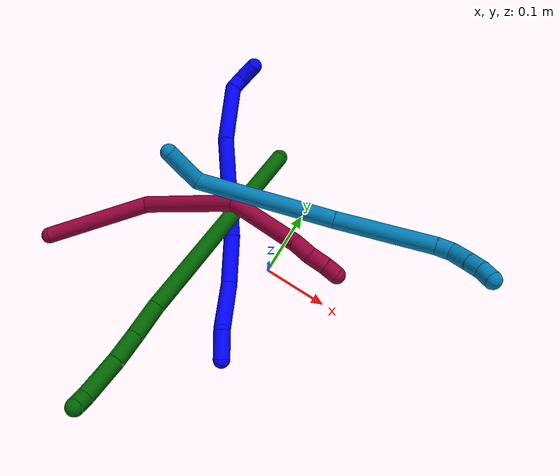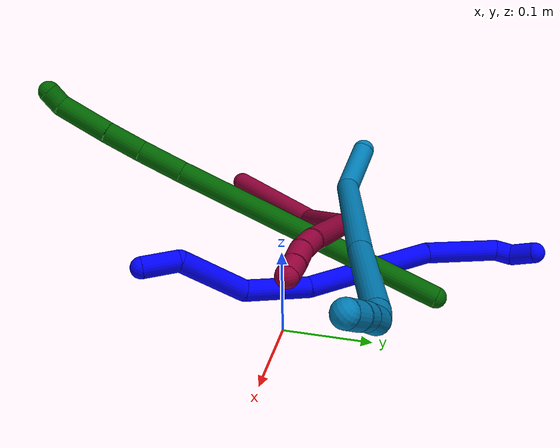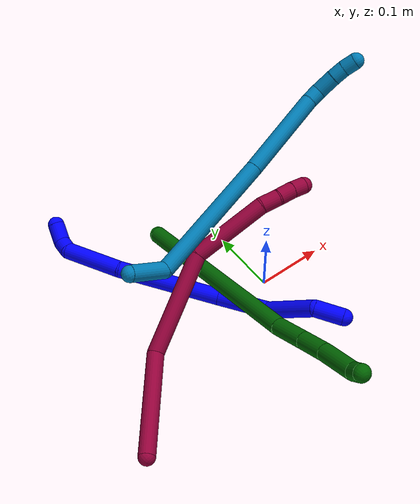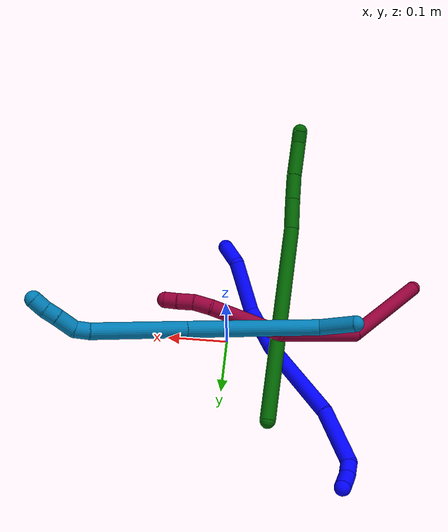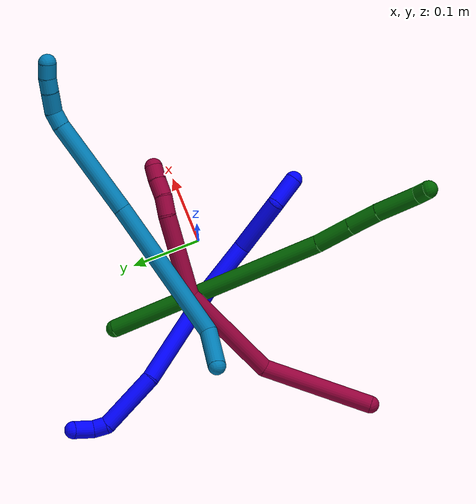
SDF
<sdf version="1.7">
 <world name="default">
  <model name="photoneo_s_sensor">
   <static>1</static>
   <pose>0 0 2 1.57079 1.57079 3.14159</pose>
   <link name="link">
    <inertial><mass>0.1</mass></inertial>
    <sensor name="sensor" type="depth">
     <update_rate>30</update_rate>
     <camera>
      <horizontal_fov>1.22</horizontal_fov>
      <image><width>1920</width><height>1200</height><format>B8G8R8</format></image>
      <clip><near>0.1</near><far>4</far></clip>
      <depth_camera><output>points</output></depth_camera>
     </camera>
     <plugin name="camera_plugin" filename="libgazebo_ros_depth_camera.so">
      <baseline>0.2</baseline>
      <alwaysOn>1</alwaysOn>
      <updateRate>0.0</updateRate>
      <cameraName>camera_ir</cameraName>
      <imageTopicName>/camera/color/image_raw</imageTopicName>
      <cameraInfoTopicName>/camera/color/camera_info</cameraInfoTopicName>
      <depthImageTopicName>/camera/depth/image_raw</depthImageTopicName>
      <depthImageCameraInfoTopicName>/camera/depth/camera_info</depthImageCameraInfoTopicName>
      <pointCloudTopicName>/camera/depth/points</pointCloudTopicName>
      <frameName>fr_optical</frameName>
      <pointCloudCutoff>0.1</pointCloudCutoff>
      <pointCloudCutoffMax>2.0</pointCloudCutoffMax>
      <distortionK1>0</distortionK1>
      <distortionK2>0</distortionK2>
      <distortionK3>0</distortionK3>
      <distortionT1>0</distortionT1>
      <distortionT2>0</distortionT2>
      <CxPrime>0</CxPrime>
      <Cx>0</Cx>
      <Cy>0</Cy>
      <focalLength>0</focalLength>
      <hackBaseline>0</hackBaseline>
     </plugin>
    </sensor>
   </link>
  </model>
  <model name="bin">
   <static>1</static>
   <link name="bottom">
    <collision name="collision-bottom">
     <pose>0 0 -0.01 0 -0 0</pose>
     <geometry><box><size>0.8 0.6 0.02</size></box></geometry>
     <surface>
      <friction><ode><mu>100</mu><mu2>100</mu2></ode></friction>
      <contact><collide_bitmask>65535</collide_bitmask></contact>
     </surface>
    </collision>
   </link>
   <link name="west_wall">
    <collision name="collision-west_wall">
     <pose>-0.41 0 0.1 0 -0 0</pose>
     <geometry><box><size>0.02 0.6 0.2</size></box></geometry>
     <surface>
      <friction><ode><mu>100</mu><mu2>100</mu2></ode></friction>
      <contact><collide_bitmask>65535</collide_bitmask></contact>
     </surface>
    </collision>
   </link>
   <link name="east_wall">
    <collision name="collision-east_wall">
     <pose>0.41 0 0.1 0 -0 0</pose>
     <geometry><box><size>0.02 0.6 0.2</size></box></geometry>
     <surface>
      <friction><ode><mu>100</mu><mu2>100</mu2></ode></friction>
      <contact><collide_bitmask>65535</collide_bitmask></contact>
     </surface>
    </collision>
   </link>
   <link name="south_wall">
    <collision name="collision-south_wall">
     <pose>0 -0.31 0.1 0 -0 0</pose>
     <geometry><box><size>0.8 0.02 0.2</size></box></geometry>
     <surface>
      <friction><ode><mu>100</mu><mu2>100</mu2></ode></friction>
      <contact><collide_bitmask>65535</collide_bitmask></contact>
     </surface>
    </collision>
   </link>
   <link name="north_wall">
    <collision name="collision-north_wall">
     <pose>0 0.31 0.1 0 -0 0</pose>
     <geometry><box><size>0.8 0.02 0.2</size></box></geometry>
     <surface>
      <friction><ode><mu>100</mu><mu2>100</mu2></ode></friction>
      <contact><collide_bitmask>65535</collide_bitmask></contact>
     </surface>
    </collision>
   </link>
  </model>
  <model name="1">
   <static>0</static>
   <link name="1">
    <collision name="collision-cylinder-e_1_1_4">
     <pose>-0.011645 0.011863 0.013375 -0.725548 -0.577321 0.224484</pose>
     <geometry><cylinder><radius>0.0125</radius><length>0.042672</length></cylinder></geometry>
     <surface>
      <friction><ode><mu>1.16</mu><mu2>1.16</mu2><slip1>0</slip1><slip2>0</slip2></ode></friction>
      <contact><ode><kp>1e+06</kp><kd>1</kd><max_vel>0</max_vel><min_depth>0.001</min_depth></ode></contact>
     </surface>
    </collision>
    <visual name="visual-cylinder-e_1_1_4">
     <pose>-0.011645 0.011863 0.013375 -0.725548 -0.577321 0.224484</pose>
     <geometry><cylinder><radius>0.0125</radius><length>0.042672</length></cylinder></geometry>
     <material><ambient>0 0 1 1</ambient></material>
    </visual>
    <collision name="collision-cylinder-e_2_4_5">
     <pose>-0.021048 0.051606 0.059332 -0.707794 0.052234 -0.019302</pose>
     <geometry><cylinder><radius>0.0125</radius><length>0.085881</length></cylinder></geometry>
     <surface>
      <friction><ode><mu>1.16</mu><mu2>1.16</mu2><slip1>0</slip1><slip2>0</slip2></ode></friction>
      <contact><ode><kp>1e+06</kp><kd>1</kd><max_vel>0</max_vel><min_depth>0.001</min_depth></ode></contact>
     </surface>
    </collision>
    <visual name="visual-cylinder-e_2_4_5">
     <pose>-0.021048 0.051606 0.059332 -0.707794 0.052234 -0.019302</pose>
     <geometry><cylinder><radius>0.0125</radius><length>0.085881</length></cylinder></geometry>
     <material><ambient>0 0 1 1</ambient></material>
    </visual>
    <collision name="collision-cylinder-e_3_5_6">
     <pose>-0.035381 0.101931 0.1187 -0.697434 -0.44288 0.163341</pose>
     <geometry><cylinder><radius>0.0125</radius><length>0.077357</length></cylinder></geometry>
     <surface>
      <friction><ode><mu>1.16</mu><mu2>1.16</mu2><slip1>0</slip1><slip2>0</slip2></ode></friction>
      <contact><ode><kp>1e+06</kp><kd>1</kd><max_vel>0</max_vel><min_depth>0.001</min_depth></ode></contact>
     </surface>
    </collision>
    <visual name="visual-cylinder-e_3_5_6">
     <pose>-0.035381 0.101931 0.1187 -0.697434 -0.44288 0.163341</pose>
     <geometry><cylinder><radius>0.0125</radius><length>0.077357</length></cylinder></geometry>
     <material><ambient>0 0 1 1</ambient></material>
    </visual>
    <collision name="collision-cylinder-e_4_6_7">
     <pose>-0.097917 0.169243 0.188245 -0.809465 -0.638074 0.281141</pose>
     <geometry><cylinder><radius>0.0125</radius><length>0.154322</length></cylinder></geometry>
     <surface>
      <friction><ode><mu>1.16</mu><mu2>1.16</mu2><slip1>0</slip1><slip2>0</slip2></ode></friction>
      <contact><ode><kp>1e+06</kp><kd>1</kd><max_vel>0</max_vel><min_depth>0.001</min_depth></ode></contact>
     </surface>
    </collision>
    <visual name="visual-cylinder-e_4_6_7">
     <pose>-0.097917 0.169243 0.188245 -0.809465 -0.638074 0.281141</pose>
     <geometry><cylinder><radius>0.0125</radius><length>0.154322</length></cylinder></geometry>
     <material><ambient>0 0 1 1</ambient></material>
    </visual>
    <collision name="collision-cylinder-e_5_7_8">
     <pose>-0.164092 0.237007 0.263743 -0.61028 -0.468396 0.15001</pose>
     <geometry><cylinder><radius>0.0125</radius><length>0.089547</length></cylinder></geometry>
     <surface>
      <friction><ode><mu>1.16</mu><mu2>1.16</mu2><slip1>0</slip1><slip2>0</slip2></ode></friction>
      <contact><ode><kp>1e+06</kp><kd>1</kd><max_vel>0</max_vel><min_depth>0.001</min_depth></ode></contact>
     </surface>
    </collision>
    <visual name="visual-cylinder-e_5_7_8">
     <pose>-0.164092 0.237007 0.263743 -0.61028 -0.468396 0.15001</pose>
     <geometry><cylinder><radius>0.0125</radius><length>0.089547</length></cylinder></geometry>
     <material><ambient>0 0 1 1</ambient></material>
    </visual>
    <collision name="collision-cylinder-e_6_8_9">
     <pose>-0.186937 0.260551 0.306441 -0.064994 -0.257874 0.00843</pose>
     <geometry><cylinder><radius>0.0125</radius><length>0.020642</length></cylinder></geometry>
     <surface>
      <friction><ode><mu>1.16</mu><mu2>1.16</mu2><slip1>0</slip1><slip2>0</slip2></ode></friction>
      <contact><ode><kp>1e+06</kp><kd>1</kd><max_vel>0</max_vel><min_depth>0.001</min_depth></ode></contact>
     </surface>
    </collision>
    <visual name="visual-cylinder-e_6_8_9">
     <pose>-0.186937 0.260551 0.306441 -0.064994 -0.257874 0.00843</pose>
     <geometry><cylinder><radius>0.0125</radius><length>0.020642</length></cylinder></geometry>
     <material><ambient>0 0 1 1</ambient></material>
    </visual>
    <collision name="collision-cylinder-e_7_9_2">
     <pose>-0.198123 0.256778 0.327625 0.375228 -0.616757 -0.120801</pose>
     <geometry><cylinder><radius>0.0125</radius><length>0.029579</length></cylinder></geometry>
     <surface>
      <friction><ode><mu>1.16</mu><mu2>1.16</mu2><slip1>0</slip1><slip2>0</slip2></ode></friction>
      <contact><ode><kp>1e+06</kp><kd>1</kd><max_vel>0</max_vel><min_depth>0.001</min_depth></ode></contact>
     </surface>
    </collision>
    <visual name="visual-cylinder-e_7_9_2">
     <pose>-0.198123 0.256778 0.327625 0.375228 -0.616757 -0.120801</pose>
     <geometry><cylinder><radius>0.0125</radius><length>0.029579</length></cylinder></geometry>
     <material><ambient>0 0 1 1</ambient></material>
    </visual>
    <collision name="collision-sphere-2">
     <pose>-0.206677 0.252356 0.33885 0 -0 0</pose>
     <geometry><sphere><radius>0.0125</radius></sphere></geometry>
     <surface>
      <friction><ode><mu>1.16</mu><mu2>1.16</mu2><slip1>0</slip1><slip2>0</slip2></ode></friction>
      <contact><ode><kp>1e+06</kp><kd>1</kd><max_vel>0</max_vel><min_depth>0.001</min_depth></ode></contact>
     </surface>
    </collision>
    <visual name="visual-sphere-2">
     <pose>-0.206677 0.252356 0.33885 0 -0 0</pose>
     <geometry><sphere><radius>0.0125</radius></sphere></geometry>
     <material><ambient>0 0 1 1</ambient></material>
    </visual>
    <collision name="collision-sphere-9">
     <pose>-0.189569 0.261199 0.3164 0 -0 0</pose>
     <geometry><sphere><radius>0.0125</radius></sphere></geometry>
     <surface>
      <friction><ode><mu>1.16</mu><mu2>1.16</mu2><slip1>0</slip1><slip2>0</slip2></ode></friction>
      <contact><ode><kp>1e+06</kp><kd>1</kd><max_vel>0</max_vel><min_depth>0.001</min_depth></ode></contact>
     </surface>
    </collision>
    <visual name="visual-sphere-9">
     <pose>-0.189569 0.261199 0.3164 0 -0 0</pose>
     <geometry><sphere><radius>0.0125</radius></sphere></geometry>
     <material><ambient>0 0 1 1</ambient></material>
    </visual>
    <collision name="collision-sphere-4">
     <pose>-0.02329 0.023726 0.02675 0 -0 0</pose>
     <geometry><sphere><radius>0.0125</radius></sphere></geometry>
     <surface>
      <friction><ode><mu>1.16</mu><mu2>1.16</mu2><slip1>0</slip1><slip2>0</slip2></ode></friction>
      <contact><ode><kp>1e+06</kp><kd>1</kd><max_vel>0</max_vel><min_depth>0.001</min_depth></ode></contact>
     </surface>
    </collision>
    <visual name="visual-sphere-4">
     <pose>-0.02329 0.023726 0.02675 0 -0 0</pose>
     <geometry><sphere><radius>0.0125</radius></sphere></geometry>
     <material><ambient>0 0 1 1</ambient></material>
    </visual>
    <collision name="collision-sphere-1">
     <geometry><sphere><radius>0.0125</radius></sphere></geometry>
     <surface>
      <friction><ode><mu>1.16</mu><mu2>1.16</mu2><slip1>0</slip1><slip2>0</slip2></ode></friction>
      <contact><ode><kp>1e+06</kp><kd>1</kd><max_vel>0</max_vel><min_depth>0.001</min_depth></ode></contact>
     </surface>
    </collision>
    <visual name="visual-sphere-1">
     <geometry><sphere><radius>0.0125</radius></sphere></geometry>
     <material><ambient>0 0 1 1</ambient></material>
    </visual>
    <collision name="collision-sphere-8">
     <pose>-0.184305 0.259903 0.296483 0 -0 0</pose>
     <geometry><sphere><radius>0.0125</radius></sphere></geometry>
     <surface>
      <friction><ode><mu>1.16</mu><mu2>1.16</mu2><slip1>0</slip1><slip2>0</slip2></ode></friction>
      <contact><ode><kp>1e+06</kp><kd>1</kd><max_vel>0</max_vel><min_depth>0.001</min_depth></ode></contact>
     </surface>
    </collision>
    <visual name="visual-sphere-8">
     <pose>-0.184305 0.259903 0.296483 0 -0 0</pose>
     <geometry><sphere><radius>0.0125</radius></sphere></geometry>
     <material><ambient>0 0 1 1</ambient></material>
    </visual>
    <collision name="collision-sphere-5">
     <pose>-0.018806 0.079486 0.091914 0 -0 0</pose>
     <geometry><sphere><radius>0.0125</radius></sphere></geometry>
     <surface>
      <friction><ode><mu>1.16</mu><mu2>1.16</mu2><slip1>0</slip1><slip2>0</slip2></ode></friction>
      <contact><ode><kp>1e+06</kp><kd>1</kd><max_vel>0</max_vel><min_depth>0.001</min_depth></ode></contact>
     </surface>
    </collision>
    <visual name="visual-sphere-5">
     <pose>-0.018806 0.079486 0.091914 0 -0 0</pose>
     <geometry><sphere><radius>0.0125</radius></sphere></geometry>
     <material><ambient>0 0 1 1</ambient></material>
    </visual>
    <collision name="collision-sphere-6">
     <pose>-0.051956 0.124375 0.145487 0 -0 0</pose>
     <geometry><sphere><radius>0.0125</radius></sphere></geometry>
     <surface>
      <friction><ode><mu>1.16</mu><mu2>1.16</mu2><slip1>0</slip1><slip2>0</slip2></ode></friction>
      <contact><ode><kp>1e+06</kp><kd>1</kd><max_vel>0</max_vel><min_depth>0.001</min_depth></ode></contact>
     </surface>
    </collision>
    <visual name="visual-sphere-6">
     <pose>-0.051956 0.124375 0.145487 0 -0 0</pose>
     <geometry><sphere><radius>0.0125</radius></sphere></geometry>
     <material><ambient>0 0 1 1</ambient></material>
    </visual>
    <collision name="collision-sphere-7">
     <pose>-0.143878 0.214111 0.231004 0 -0 0</pose>
     <geometry><sphere><radius>0.0125</radius></sphere></geometry>
     <surface>
      <friction><ode><mu>1.16</mu><mu2>1.16</mu2><slip1>0</slip1><slip2>0</slip2></ode></friction>
      <contact><ode><kp>1e+06</kp><kd>1</kd><max_vel>0</max_vel><min_depth>0.001</min_depth></ode></contact>
     </surface>
    </collision>
    <visual name="visual-sphere-7">
     <pose>-0.143878 0.214111 0.231004 0 -0 0</pose>
     <geometry><sphere><radius>0.0125</radius></sphere></geometry>
     <material><ambient>0 0 1 1</ambient></material>
    </visual>
    <inertial>
     <pose>-0.08913 0.146276 0.167065 0 -0 0</pose>
     <mass>0.5</mass>
     <inertia>
      <ixx>0.000469</ixx>
      <ixy>0</ixy>
      <ixz>0</ixz>
      <iyy>0.000489</iyy>
      <iyz>0</iyz>
      <izz>-1.5e-05</izz>
     </inertia>
    </inertial>
   </link>
   <pose>0.016384 -0.153303 0.06956 -2.189 0.991979 -0.824628</pose>
  </model>
  <model name="6">
   <static>0</static>
   <link name="6">
    <collision name="collision-cylinder-e_1_1_4">
     <pose>0.000173 -0.015282 0.160402 0.094985 0.001075 5.1e-05</pose>
     <geometry><cylinder><radius>0.0125</radius><length>0.322256</length></cylinder></geometry>
     <surface>
      <friction><ode><mu>1.16</mu><mu2>1.16</mu2><slip1>0</slip1><slip2>0</slip2></ode></friction>
      <contact><ode><kp>1e+06</kp><kd>1</kd><max_vel>0</max_vel><min_depth>0.001</min_depth></ode></contact>
     </surface>
    </collision>
    <visual name="visual-cylinder-e_1_1_4">
     <pose>0.000173 -0.015282 0.160402 0.094985 0.001075 5.1e-05</pose>
     <geometry><cylinder><radius>0.0125</radius><length>0.322256</length></cylinder></geometry>
     <material><ambient>0 0.392157 0.003922 1</ambient></material>
    </visual>
    <collision name="collision-cylinder-e_2_4_5">
     <pose>0.003015 -0.033826 0.34669 0.125371 0.101931 0.006403</pose>
     <geometry><cylinder><radius>0.0125</radius><length>0.052454</length></cylinder></geometry>
     <surface>
      <friction><ode><mu>1.16</mu><mu2>1.16</mu2><slip1>0</slip1><slip2>0</slip2></ode></friction>
      <contact><ode><kp>1e+06</kp><kd>1</kd><max_vel>0</max_vel><min_depth>0.001</min_depth></ode></contact>
     </surface>
    </collision>
    <visual name="visual-cylinder-e_2_4_5">
     <pose>0.003015 -0.033826 0.34669 0.125371 0.101931 0.006403</pose>
     <geometry><cylinder><radius>0.0125</radius><length>0.052454</length></cylinder></geometry>
     <material><ambient>0 0.392157 0.003922 1</ambient></material>
    </visual>
    <collision name="collision-cylinder-e_3_5_6">
     <pose>0.008004 -0.039256 0.394129 0.100231 0.106677 0.005356</pose>
     <geometry><cylinder><radius>0.0125</radius><length>0.043572</length></cylinder></geometry>
     <surface>
      <friction><ode><mu>1.16</mu><mu2>1.16</mu2><slip1>0</slip1><slip2>0</slip2></ode></friction>
      <contact><ode><kp>1e+06</kp><kd>1</kd><max_vel>0</max_vel><min_depth>0.001</min_depth></ode></contact>
     </surface>
    </collision>
    <visual name="visual-cylinder-e_3_5_6">
     <pose>0.008004 -0.039256 0.394129 0.100231 0.106677 0.005356</pose>
     <geometry><cylinder><radius>0.0125</radius><length>0.043572</length></cylinder></geometry>
     <material><ambient>0 0.392157 0.003922 1</ambient></material>
    </visual>
    <collision name="collision-cylinder-e_4_6_7">
     <pose>0.012469 -0.042796 0.446261 0.044846 0.069988 0.00157</pose>
     <geometry><cylinder><radius>0.0125</radius><length>0.061368</length></cylinder></geometry>
     <surface>
      <friction><ode><mu>1.16</mu><mu2>1.16</mu2><slip1>0</slip1><slip2>0</slip2></ode></friction>
      <contact><ode><kp>1e+06</kp><kd>1</kd><max_vel>0</max_vel><min_depth>0.001</min_depth></ode></contact>
     </surface>
    </collision>
    <visual name="visual-cylinder-e_4_6_7">
     <pose>0.012469 -0.042796 0.446261 0.044846 0.069988 0.00157</pose>
     <geometry><cylinder><radius>0.0125</radius><length>0.061368</length></cylinder></geometry>
     <material><ambient>0 0.392157 0.003922 1</ambient></material>
    </visual>
    <collision name="collision-cylinder-e_5_7_2">
     <pose>0.018293 -0.042664 0.486206 -0.159197 0.369856 -0.029841</pose>
     <geometry><cylinder><radius>0.0125</radius><length>0.02035</length></cylinder></geometry>
     <surface>
      <friction><ode><mu>1.16</mu><mu2>1.16</mu2><slip1>0</slip1><slip2>0</slip2></ode></friction>
      <contact><ode><kp>1e+06</kp><kd>1</kd><max_vel>0</max_vel><min_depth>0.001</min_depth></ode></contact>
     </surface>
    </collision>
    <visual name="visual-cylinder-e_5_7_2">
     <pose>0.018293 -0.042664 0.486206 -0.159197 0.369856 -0.029841</pose>
     <geometry><cylinder><radius>0.0125</radius><length>0.02035</length></cylinder></geometry>
     <material><ambient>0 0.392157 0.003922 1</ambient></material>
    </visual>
    <collision name="collision-sphere-2">
     <pose>0.021971 -0.04116 0.495572 0 -0 0</pose>
     <geometry><sphere><radius>0.0125</radius></sphere></geometry>
     <surface>
      <friction><ode><mu>1.16</mu><mu2>1.16</mu2><slip1>0</slip1><slip2>0</slip2></ode></friction>
      <contact><ode><kp>1e+06</kp><kd>1</kd><max_vel>0</max_vel><min_depth>0.001</min_depth></ode></contact>
     </surface>
    </collision>
    <visual name="visual-sphere-2">
     <pose>0.021971 -0.04116 0.495572 0 -0 0</pose>
     <geometry><sphere><radius>0.0125</radius></sphere></geometry>
     <material><ambient>0 0.392157 0.003922 1</ambient></material>
    </visual>
    <collision name="collision-sphere-7">
     <pose>0.014615 -0.044168 0.476839 0 -0 0</pose>
     <geometry><sphere><radius>0.0125</radius></sphere></geometry>
     <surface>
      <friction><ode><mu>1.16</mu><mu2>1.16</mu2><slip1>0</slip1><slip2>0</slip2></ode></friction>
      <contact><ode><kp>1e+06</kp><kd>1</kd><max_vel>0</max_vel><min_depth>0.001</min_depth></ode></contact>
     </surface>
    </collision>
    <visual name="visual-sphere-7">
     <pose>0.014615 -0.044168 0.476839 0 -0 0</pose>
     <geometry><sphere><radius>0.0125</radius></sphere></geometry>
     <material><ambient>0 0.392157 0.003922 1</ambient></material>
    </visual>
    <collision name="collision-sphere-6">
     <pose>0.010323 -0.041423 0.415682 0 -0 0</pose>
     <geometry><sphere><radius>0.0125</radius></sphere></geometry>
     <surface>
      <friction><ode><mu>1.16</mu><mu2>1.16</mu2><slip1>0</slip1><slip2>0</slip2></ode></friction>
      <contact><ode><kp>1e+06</kp><kd>1</kd><max_vel>0</max_vel><min_depth>0.001</min_depth></ode></contact>
     </surface>
    </collision>
    <visual name="visual-sphere-6">
     <pose>0.010323 -0.041423 0.415682 0 -0 0</pose>
     <geometry><sphere><radius>0.0125</radius></sphere></geometry>
     <material><ambient>0 0.392157 0.003922 1</ambient></material>
    </visual>
    <collision name="collision-sphere-5">
     <pose>0.005684 -0.037088 0.372576 0 -0 0</pose>
     <geometry><sphere><radius>0.0125</radius></sphere></geometry>
     <surface>
      <friction><ode><mu>1.16</mu><mu2>1.16</mu2><slip1>0</slip1><slip2>0</slip2></ode></friction>
      <contact><ode><kp>1e+06</kp><kd>1</kd><max_vel>0</max_vel><min_depth>0.001</min_depth></ode></contact>
     </surface>
    </collision>
    <visual name="visual-sphere-5">
     <pose>0.005684 -0.037088 0.372576 0 -0 0</pose>
     <geometry><sphere><radius>0.0125</radius></sphere></geometry>
     <material><ambient>0 0.392157 0.003922 1</ambient></material>
    </visual>
    <collision name="collision-sphere-1">
     <geometry><sphere><radius>0.0125</radius></sphere></geometry>
     <surface>
      <friction><ode><mu>1.16</mu><mu2>1.16</mu2><slip1>0</slip1><slip2>0</slip2></ode></friction>
      <contact><ode><kp>1e+06</kp><kd>1</kd><max_vel>0</max_vel><min_depth>0.001</min_depth></ode></contact>
     </surface>
    </collision>
    <visual name="visual-sphere-1">
     <geometry><sphere><radius>0.0125</radius></sphere></geometry>
     <material><ambient>0 0.392157 0.003922 1</ambient></material>
    </visual>
    <collision name="collision-sphere-4">
     <pose>0.000346 -0.030563 0.320804 0 -0 0</pose>
     <geometry><sphere><radius>0.0125</radius></sphere></geometry>
     <surface>
      <friction><ode><mu>1.16</mu><mu2>1.16</mu2><slip1>0</slip1><slip2>0</slip2></ode></friction>
      <contact><ode><kp>1e+06</kp><kd>1</kd><max_vel>0</max_vel><min_depth>0.001</min_depth></ode></contact>
     </surface>
    </collision>
    <visual name="visual-sphere-4">
     <pose>0.000346 -0.030563 0.320804 0 -0 0</pose>
     <geometry><sphere><radius>0.0125</radius></sphere></geometry>
     <material><ambient>0 0.392157 0.003922 1</ambient></material>
    </visual>
    <inertial>
     <pose>0.0034 -0.023808 0.248658 0 -0 0</pose>
     <mass>0.5</mass>
     <inertia><ixx>0.002849</ixx><ixy>0</ixy><ixz>0</ixz><iyy>0.002831</iyy><iyz>0</iyz><izz>0.0003</izz></inertia>
    </inertial>
   </link>
   <pose>-0.078652 0.158709 0.016768 0.81694 -0.948388 0.504585</pose>
  </model>
  <model name="8">
   <static>0</static>
   <link name="8">
    <collision name="collision-cylinder-e_1_1_4">
     <pose>0.047385 0.032337 0.054789 -0.533196 0.640177 -0.180566</pose>
     <geometry><cylinder><radius>0.0125</radius><length>0.158655</length></cylinder></geometry>
     <surface>
      <friction><ode><mu>1.16</mu><mu2>1.16</mu2><slip1>0</slip1><slip2>0</slip2></ode></friction>
      <contact><ode><kp>1e+06</kp><kd>1</kd><max_vel>0</max_vel><min_depth>0.001</min_depth></ode></contact>
     </surface>
    </collision>
    <visual name="visual-cylinder-e_1_1_4">
     <pose>0.047385 0.032337 0.054789 -0.533196 0.640177 -0.180566</pose>
     <geometry><cylinder><radius>0.0125</radius><length>0.158655</length></cylinder></geometry>
     <material><ambient>0.584314 0 0.227451 1</ambient></material>
    </visual>
    <collision name="collision-cylinder-e_2_4_5">
     <pose>0.164039 0.069946 0.141706 -0.162637 1.13141 -0.103398</pose>
     <geometry><cylinder><radius>0.0125</radius><length>0.153077</length></cylinder></geometry>
     <surface>
      <friction><ode><mu>1.16</mu><mu2>1.16</mu2><slip1>0</slip1><slip2>0</slip2></ode></friction>
      <contact><ode><kp>1e+06</kp><kd>1</kd><max_vel>0</max_vel><min_depth>0.001</min_depth></ode></contact>
     </surface>
    </collision>
    <visual name="visual-cylinder-e_2_4_5">
     <pose>0.164039 0.069946 0.141706 -0.162637 1.13141 -0.103398</pose>
     <geometry><cylinder><radius>0.0125</radius><length>0.153077</length></cylinder></geometry>
     <material><ambient>0.584314 0 0.227451 1</ambient></material>
    </visual>
    <collision name="collision-cylinder-e_3_5_6">
     <pose>0.290557 0.080089 0.16873 -2.37964 1.44817 -2.291</pose>
     <geometry><cylinder><radius>0.0125</radius><length>0.115366</length></cylinder></geometry>
     <surface>
      <friction><ode><mu>1.16</mu><mu2>1.16</mu2><slip1>0</slip1><slip2>0</slip2></ode></friction>
      <contact><ode><kp>1e+06</kp><kd>1</kd><max_vel>0</max_vel><min_depth>0.001</min_depth></ode></contact>
     </surface>
    </collision>
    <visual name="visual-cylinder-e_3_5_6">
     <pose>0.290557 0.080089 0.16873 -2.37964 1.44817 -2.291</pose>
     <geometry><cylinder><radius>0.0125</radius><length>0.115366</length></cylinder></geometry>
     <material><ambient>0.584314 0 0.227451 1</ambient></material>
    </visual>
    <collision name="collision-cylinder-e_4_6_7">
     <pose>0.36051 0.088748 0.160406 -2.2752 1.19777 -1.95046</pose>
     <geometry><cylinder><radius>0.0125</radius><length>0.027282</length></cylinder></geometry>
     <surface>
      <friction><ode><mu>1.16</mu><mu2>1.16</mu2><slip1>0</slip1><slip2>0</slip2></ode></friction>
      <contact><ode><kp>1e+06</kp><kd>1</kd><max_vel>0</max_vel><min_depth>0.001</min_depth></ode></contact>
     </surface>
    </collision>
    <visual name="visual-cylinder-e_4_6_7">
     <pose>0.36051 0.088748 0.160406 -2.2752 1.19777 -1.95046</pose>
     <geometry><cylinder><radius>0.0125</radius><length>0.027282</length></cylinder></geometry>
     <material><ambient>0.584314 0 0.227451 1</ambient></material>
    </visual>
    <collision name="collision-cylinder-e_5_7_8">
     <pose>0.384271 0.098371 0.155564 -1.84203 1.06974 -1.32451</pose>
     <geometry><cylinder><radius>0.0125</radius><length>0.025218</length></cylinder></geometry>
     <surface>
      <friction><ode><mu>1.16</mu><mu2>1.16</mu2><slip1>0</slip1><slip2>0</slip2></ode></friction>
      <contact><ode><kp>1e+06</kp><kd>1</kd><max_vel>0</max_vel><min_depth>0.001</min_depth></ode></contact>
     </surface>
    </collision>
    <visual name="visual-cylinder-e_5_7_8">
     <pose>0.384271 0.098371 0.155564 -1.84203 1.06974 -1.32451</pose>
     <geometry><cylinder><radius>0.0125</radius><length>0.025218</length></cylinder></geometry>
     <material><ambient>0.584314 0 0.227451 1</ambient></material>
    </visual>
    <collision name="collision-cylinder-e_6_8_2">
     <pose>0.404044 0.108998 0.151663 -2.01462 1.02389 -1.45381</pose>
     <geometry><cylinder><radius>0.0125</radius><length>0.020402</length></cylinder></geometry>
     <surface>
      <friction><ode><mu>1.16</mu><mu2>1.16</mu2><slip1>0</slip1><slip2>0</slip2></ode></friction>
      <contact><ode><kp>1e+06</kp><kd>1</kd><max_vel>0</max_vel><min_depth>0.001</min_depth></ode></contact>
     </surface>
    </collision>
    <visual name="visual-cylinder-e_6_8_2">
     <pose>0.404044 0.108998 0.151663 -2.01462 1.02389 -1.45381</pose>
     <geometry><cylinder><radius>0.0125</radius><length>0.020402</length></cylinder></geometry>
     <material><ambient>0.584314 0 0.227451 1</ambient></material>
    </visual>
    <collision name="collision-sphere-2">
     <pose>0.412757 0.113789 0.149385 0 -0 0</pose>
     <geometry><sphere><radius>0.0125</radius></sphere></geometry>
     <surface>
      <friction><ode><mu>1.16</mu><mu2>1.16</mu2><slip1>0</slip1><slip2>0</slip2></ode></friction>
      <contact><ode><kp>1e+06</kp><kd>1</kd><max_vel>0</max_vel><min_depth>0.001</min_depth></ode></contact>
     </surface>
    </collision>
    <visual name="visual-sphere-2">
     <pose>0.412757 0.113789 0.149385 0 -0 0</pose>
     <geometry><sphere><radius>0.0125</radius></sphere></geometry>
     <material><ambient>0.584314 0 0.227451 1</ambient></material>
    </visual>
    <collision name="collision-sphere-4">
     <pose>0.094771 0.064674 0.109577 0 -0 0</pose>
     <geometry><sphere><radius>0.0125</radius></sphere></geometry>
     <surface>
      <friction><ode><mu>1.16</mu><mu2>1.16</mu2><slip1>0</slip1><slip2>0</slip2></ode></friction>
      <contact><ode><kp>1e+06</kp><kd>1</kd><max_vel>0</max_vel><min_depth>0.001</min_depth></ode></contact>
     </surface>
    </collision>
    <visual name="visual-sphere-4">
     <pose>0.094771 0.064674 0.109577 0 -0 0</pose>
     <geometry><sphere><radius>0.0125</radius></sphere></geometry>
     <material><ambient>0.584314 0 0.227451 1</ambient></material>
    </visual>
    <collision name="collision-sphere-1">
     <geometry><sphere><radius>0.0125</radius></sphere></geometry>
     <surface>
      <friction><ode><mu>1.16</mu><mu2>1.16</mu2><slip1>0</slip1><slip2>0</slip2></ode></friction>
      <contact><ode><kp>1e+06</kp><kd>1</kd><max_vel>0</max_vel><min_depth>0.001</min_depth></ode></contact>
     </surface>
    </collision>
    <visual name="visual-sphere-1">
     <geometry><sphere><radius>0.0125</radius></sphere></geometry>
     <material><ambient>0.584314 0 0.227451 1</ambient></material>
    </visual>
    <collision name="collision-sphere-8">
     <pose>0.39533 0.104206 0.153941 0 -0 0</pose>
     <geometry><sphere><radius>0.0125</radius></sphere></geometry>
     <surface>
      <friction><ode><mu>1.16</mu><mu2>1.16</mu2><slip1>0</slip1><slip2>0</slip2></ode></friction>
      <contact><ode><kp>1e+06</kp><kd>1</kd><max_vel>0</max_vel><min_depth>0.001</min_depth></ode></contact>
     </surface>
    </collision>
    <visual name="visual-sphere-8">
     <pose>0.39533 0.104206 0.153941 0 -0 0</pose>
     <geometry><sphere><radius>0.0125</radius></sphere></geometry>
     <material><ambient>0.584314 0 0.227451 1</ambient></material>
    </visual>
    <collision name="collision-sphere-5">
     <pose>0.233307 0.075218 0.173834 0 -0 0</pose>
     <geometry><sphere><radius>0.0125</radius></sphere></geometry>
     <surface>
      <friction><ode><mu>1.16</mu><mu2>1.16</mu2><slip1>0</slip1><slip2>0</slip2></ode></friction>
      <contact><ode><kp>1e+06</kp><kd>1</kd><max_vel>0</max_vel><min_depth>0.001</min_depth></ode></contact>
     </surface>
    </collision>
    <visual name="visual-sphere-5">
     <pose>0.233307 0.075218 0.173834 0 -0 0</pose>
     <geometry><sphere><radius>0.0125</radius></sphere></geometry>
     <material><ambient>0.584314 0 0.227451 1</ambient></material>
    </visual>
    <collision name="collision-sphere-6">
     <pose>0.347807 0.08496 0.163625 0 -0 0</pose>
     <geometry><sphere><radius>0.0125</radius></sphere></geometry>
     <surface>
      <friction><ode><mu>1.16</mu><mu2>1.16</mu2><slip1>0</slip1><slip2>0</slip2></ode></friction>
      <contact><ode><kp>1e+06</kp><kd>1</kd><max_vel>0</max_vel><min_depth>0.001</min_depth></ode></contact>
     </surface>
    </collision>
    <visual name="visual-sphere-6">
     <pose>0.347807 0.08496 0.163625 0 -0 0</pose>
     <geometry><sphere><radius>0.0125</radius></sphere></geometry>
     <material><ambient>0.584314 0 0.227451 1</ambient></material>
    </visual>
    <collision name="collision-sphere-7">
     <pose>0.373212 0.092536 0.157186 0 -0 0</pose>
     <geometry><sphere><radius>0.0125</radius></sphere></geometry>
     <surface>
      <friction><ode><mu>1.16</mu><mu2>1.16</mu2><slip1>0</slip1><slip2>0</slip2></ode></friction>
      <contact><ode><kp>1e+06</kp><kd>1</kd><max_vel>0</max_vel><min_depth>0.001</min_depth></ode></contact>
     </surface>
    </collision>
    <visual name="visual-sphere-7">
     <pose>0.373212 0.092536 0.157186 0 -0 0</pose>
     <geometry><sphere><radius>0.0125</radius></sphere></geometry>
     <material><ambient>0.584314 0 0.227451 1</ambient></material>
    </visual>
    <inertial>
     <pose>0.187836 0.064406 0.122487 0 -0 0</pose>
     <mass>0.5</mass>
     <inertia>
      <ixx>0.000341</ixx>
      <ixy>0</ixy>
      <ixz>0</ixz>
      <iyy>0.000678</iyy>
      <iyz>0</iyz>
      <izz>-0.000777</izz>
     </inertia>
    </inertial>
   </link>
   <pose>-0.314083 -0.136785 0.011498 -1.31323 -0.46439 -0.020761</pose>
  </model>
  <model name="9">
   <static>0</static>
   <link name="9">
    <collision name="collision-cylinder-e_1_1_4">
     <pose>0.024899 0.00794 -0.014 -2.62567 0.996955 -2.23891</pose>
     <geometry><cylinder><radius>0.0125</radius><length>0.059297</length></cylinder></geometry>
     <surface>
      <friction><ode><mu>1.16</mu><mu2>1.16</mu2><slip1>0</slip1><slip2>0</slip2></ode></friction>
      <contact><ode><kp>1e+06</kp><kd>1</kd><max_vel>0</max_vel><min_depth>0.001</min_depth></ode></contact>
     </surface>
    </collision>
    <visual name="visual-cylinder-e_1_1_4">
     <pose>0.024899 0.00794 -0.014 -2.62567 0.996955 -2.23891</pose>
     <geometry><cylinder><radius>0.0125</radius><length>0.059297</length></cylinder></geometry>
     <material><ambient>0 0.490196 0.709804 1</ambient></material>
    </visual>
    <collision name="collision-cylinder-e_2_4_5">
     <pose>0.148128 0.037486 -0.005346 -0.761717 1.26257 -0.569555</pose>
     <geometry><cylinder><radius>0.0125</radius><length>0.206386</length></cylinder></geometry>
     <surface>
      <friction><ode><mu>1.16</mu><mu2>1.16</mu2><slip1>0</slip1><slip2>0</slip2></ode></friction>
      <contact><ode><kp>1e+06</kp><kd>1</kd><max_vel>0</max_vel><min_depth>0.001</min_depth></ode></contact>
     </surface>
    </collision>
    <visual name="visual-cylinder-e_2_4_5">
     <pose>0.148128 0.037486 -0.005346 -0.761717 1.26257 -0.569555</pose>
     <geometry><cylinder><radius>0.0125</radius><length>0.206386</length></cylinder></geometry>
     <material><ambient>0 0.490196 0.709804 1</ambient></material>
    </visual>
    <collision name="collision-cylinder-e_3_5_6">
     <pose>0.313113 0.074049 0.034825 -0.706741 1.23808 -0.513964</pose>
     <geometry><cylinder><radius>0.0125</radius><length>0.141045</length></cylinder></geometry>
     <surface>
      <friction><ode><mu>1.16</mu><mu2>1.16</mu2><slip1>0</slip1><slip2>0</slip2></ode></friction>
      <contact><ode><kp>1e+06</kp><kd>1</kd><max_vel>0</max_vel><min_depth>0.001</min_depth></ode></contact>
     </surface>
    </collision>
    <visual name="visual-cylinder-e_3_5_6">
     <pose>0.313113 0.074049 0.034825 -0.706741 1.23808 -0.513964</pose>
     <geometry><cylinder><radius>0.0125</radius><length>0.141045</length></cylinder></geometry>
     <material><ambient>0 0.490196 0.709804 1</ambient></material>
    </visual>
    <collision name="collision-cylinder-e_4_6_7">
     <pose>0.390366 0.089686 0.054846 -0.264998 1.33068 -0.208412</pose>
     <geometry><cylinder><radius>0.0125</radius><length>0.021822</length></cylinder></geometry>
     <surface>
      <friction><ode><mu>1.16</mu><mu2>1.16</mu2><slip1>0</slip1><slip2>0</slip2></ode></friction>
      <contact><ode><kp>1e+06</kp><kd>1</kd><max_vel>0</max_vel><min_depth>0.001</min_depth></ode></contact>
     </surface>
    </collision>
    <visual name="visual-cylinder-e_4_6_7">
     <pose>0.390366 0.089686 0.054846 -0.264998 1.33068 -0.208412</pose>
     <geometry><cylinder><radius>0.0125</radius><length>0.021822</length></cylinder></geometry>
     <material><ambient>0 0.490196 0.709804 1</ambient></material>
    </visual>
    <collision name="collision-cylinder-e_5_7_8">
     <pose>0.413855 0.084178 0.062362 0.889991 1.01747 0.519894</pose>
     <geometry><cylinder><radius>0.0125</radius><length>0.030304</length></cylinder></geometry>
     <surface>
      <friction><ode><mu>1.16</mu><mu2>1.16</mu2><slip1>0</slip1><slip2>0</slip2></ode></friction>
      <contact><ode><kp>1e+06</kp><kd>1</kd><max_vel>0</max_vel><min_depth>0.001</min_depth></ode></contact>
     </surface>
    </collision>
    <visual name="visual-cylinder-e_5_7_8">
     <pose>0.413855 0.084178 0.062362 0.889991 1.01747 0.519894</pose>
     <geometry><cylinder><radius>0.0125</radius><length>0.030304</length></cylinder></geometry>
     <material><ambient>0 0.490196 0.709804 1</ambient></material>
    </visual>
    <collision name="collision-cylinder-e_6_8_9">
     <pose>0.435798 0.074219 0.070144 0.937275 1.09366 0.597895</pose>
     <geometry><cylinder><radius>0.0125</radius><length>0.020379</length></cylinder></geometry>
     <surface>
      <friction><ode><mu>1.16</mu><mu2>1.16</mu2><slip1>0</slip1><slip2>0</slip2></ode></friction>
      <contact><ode><kp>1e+06</kp><kd>1</kd><max_vel>0</max_vel><min_depth>0.001</min_depth></ode></contact>
     </surface>
    </collision>
    <visual name="visual-cylinder-e_6_8_9">
     <pose>0.435798 0.074219 0.070144 0.937275 1.09366 0.597895</pose>
     <geometry><cylinder><radius>0.0125</radius><length>0.020379</length></cylinder></geometry>
     <material><ambient>0 0.490196 0.709804 1</ambient></material>
    </visual>
    <collision name="collision-cylinder-e_7_9_2">
     <pose>0.453614 0.065183 0.074725 1.23943 1.00488 0.747249</pose>
     <geometry><cylinder><radius>0.0125</radius><length>0.020768</length></cylinder></geometry>
     <surface>
      <friction><ode><mu>1.16</mu><mu2>1.16</mu2><slip1>0</slip1><slip2>0</slip2></ode></friction>
      <contact><ode><kp>1e+06</kp><kd>1</kd><max_vel>0</max_vel><min_depth>0.001</min_depth></ode></contact>
     </surface>
    </collision>
    <visual name="visual-cylinder-e_7_9_2">
     <pose>0.453614 0.065183 0.074725 1.23943 1.00488 0.747249</pose>
     <geometry><cylinder><radius>0.0125</radius><length>0.020768</length></cylinder></geometry>
     <material><ambient>0 0.490196 0.709804 1</ambient></material>
    </visual>
    <collision name="collision-sphere-2">
     <pose>0.462379 0.059918 0.076536 0 -0 0</pose>
     <geometry><sphere><radius>0.0125</radius></sphere></geometry>
     <surface>
      <friction><ode><mu>1.16</mu><mu2>1.16</mu2><slip1>0</slip1><slip2>0</slip2></ode></friction>
      <contact><ode><kp>1e+06</kp><kd>1</kd><max_vel>0</max_vel><min_depth>0.001</min_depth></ode></contact>
     </surface>
    </collision>
    <visual name="visual-sphere-2">
     <pose>0.462379 0.059918 0.076536 0 -0 0</pose>
     <geometry><sphere><radius>0.0125</radius></sphere></geometry>
     <material><ambient>0 0.490196 0.709804 1</ambient></material>
    </visual>
    <collision name="collision-sphere-9">
     <pose>0.444849 0.070447 0.072914 0 -0 0</pose>
     <geometry><sphere><radius>0.0125</radius></sphere></geometry>
     <surface>
      <friction><ode><mu>1.16</mu><mu2>1.16</mu2><slip1>0</slip1><slip2>0</slip2></ode></friction>
      <contact><ode><kp>1e+06</kp><kd>1</kd><max_vel>0</max_vel><min_depth>0.001</min_depth></ode></contact>
     </surface>
    </collision>
    <visual name="visual-sphere-9">
     <pose>0.444849 0.070447 0.072914 0 -0 0</pose>
     <geometry><sphere><radius>0.0125</radius></sphere></geometry>
     <material><ambient>0 0.490196 0.709804 1</ambient></material>
    </visual>
    <collision name="collision-sphere-4">
     <pose>0.049799 0.01588 -0.028 0 -0 0</pose>
     <geometry><sphere><radius>0.0125</radius></sphere></geometry>
     <surface>
      <friction><ode><mu>1.16</mu><mu2>1.16</mu2><slip1>0</slip1><slip2>0</slip2></ode></friction>
      <contact><ode><kp>1e+06</kp><kd>1</kd><max_vel>0</max_vel><min_depth>0.001</min_depth></ode></contact>
     </surface>
    </collision>
    <visual name="visual-sphere-4">
     <pose>0.049799 0.01588 -0.028 0 -0 0</pose>
     <geometry><sphere><radius>0.0125</radius></sphere></geometry>
     <material><ambient>0 0.490196 0.709804 1</ambient></material>
    </visual>
    <collision name="collision-sphere-1">
     <geometry><sphere><radius>0.0125</radius></sphere></geometry>
     <surface>
      <friction><ode><mu>1.16</mu><mu2>1.16</mu2><slip1>0</slip1><slip2>0</slip2></ode></friction>
      <contact><ode><kp>1e+06</kp><kd>1</kd><max_vel>0</max_vel><min_depth>0.001</min_depth></ode></contact>
     </surface>
    </collision>
    <visual name="visual-sphere-1">
     <geometry><sphere><radius>0.0125</radius></sphere></geometry>
     <material><ambient>0 0.490196 0.709804 1</ambient></material>
    </visual>
    <collision name="collision-sphere-8">
     <pose>0.426746 0.07799 0.067374 0 -0 0</pose>
     <geometry><sphere><radius>0.0125</radius></sphere></geometry>
     <surface>
      <friction><ode><mu>1.16</mu><mu2>1.16</mu2><slip1>0</slip1><slip2>0</slip2></ode></friction>
      <contact><ode><kp>1e+06</kp><kd>1</kd><max_vel>0</max_vel><min_depth>0.001</min_depth></ode></contact>
     </surface>
    </collision>
    <visual name="visual-sphere-8">
     <pose>0.426746 0.07799 0.067374 0 -0 0</pose>
     <geometry><sphere><radius>0.0125</radius></sphere></geometry>
     <material><ambient>0 0.490196 0.709804 1</ambient></material>
    </visual>
    <collision name="collision-sphere-5">
     <pose>0.246458 0.059092 0.017308 0 -0 0</pose>
     <geometry><sphere><radius>0.0125</radius></sphere></geometry>
     <surface>
      <friction><ode><mu>1.16</mu><mu2>1.16</mu2><slip1>0</slip1><slip2>0</slip2></ode></friction>
      <contact><ode><kp>1e+06</kp><kd>1</kd><max_vel>0</max_vel><min_depth>0.001</min_depth></ode></contact>
     </surface>
    </collision>
    <visual name="visual-sphere-5">
     <pose>0.246458 0.059092 0.017308 0 -0 0</pose>
     <geometry><sphere><radius>0.0125</radius></sphere></geometry>
     <material><ambient>0 0.490196 0.709804 1</ambient></material>
    </visual>
    <collision name="collision-sphere-6">
     <pose>0.379768 0.089006 0.052341 0 -0 0</pose>
     <geometry><sphere><radius>0.0125</radius></sphere></geometry>
     <surface>
      <friction><ode><mu>1.16</mu><mu2>1.16</mu2><slip1>0</slip1><slip2>0</slip2></ode></friction>
      <contact><ode><kp>1e+06</kp><kd>1</kd><max_vel>0</max_vel><min_depth>0.001</min_depth></ode></contact>
     </surface>
    </collision>
    <visual name="visual-sphere-6">
     <pose>0.379768 0.089006 0.052341 0 -0 0</pose>
     <geometry><sphere><radius>0.0125</radius></sphere></geometry>
     <material><ambient>0 0.490196 0.709804 1</ambient></material>
    </visual>
    <collision name="collision-sphere-7">
     <pose>0.400964 0.090365 0.05735 0 -0 0</pose>
     <geometry><sphere><radius>0.0125</radius></sphere></geometry>
     <surface>
      <friction><ode><mu>1.16</mu><mu2>1.16</mu2><slip1>0</slip1><slip2>0</slip2></ode></friction>
      <contact><ode><kp>1e+06</kp><kd>1</kd><max_vel>0</max_vel><min_depth>0.001</min_depth></ode></contact>
     </surface>
    </collision>
    <visual name="visual-sphere-7">
     <pose>0.400964 0.090365 0.05735 0 -0 0</pose>
     <geometry><sphere><radius>0.0125</radius></sphere></geometry>
     <material><ambient>0 0.490196 0.709804 1</ambient></material>
    </visual>
    <inertial>
     <pose>0.231145 0.052052 0.018093 0 -0 0</pose>
     <mass>0.5</mass>
     <inertia>
      <ixx>0.000124</ixx>
      <ixy>0</ixy>
      <ixz>0</ixz>
      <iyy>0.000808</iyy>
      <iyz>0</iyz>
      <izz>-0.001158</izz>
     </inertia>
    </inertial>
   </link>
   <pose>-0.202096 0.050548 0.131902 -0.670736 -0.134562 -0.066654</pose>
  </model>
 </world>
</sdf>
